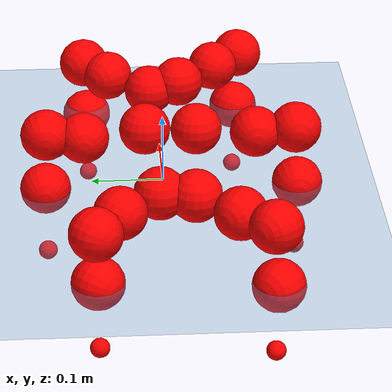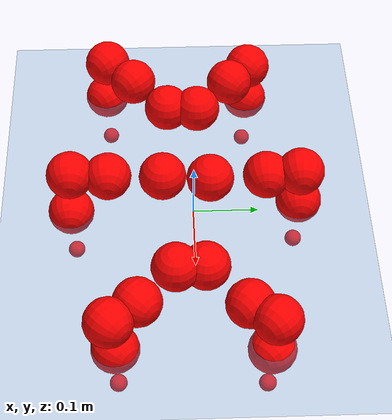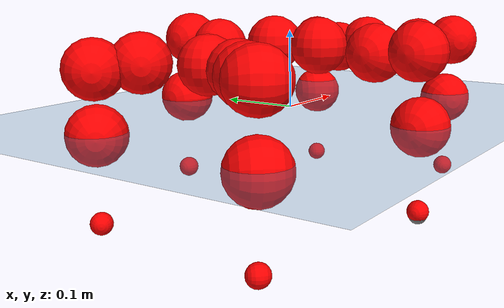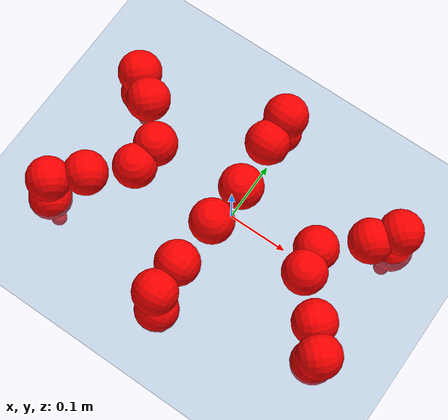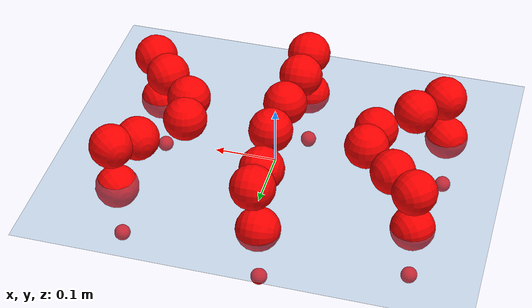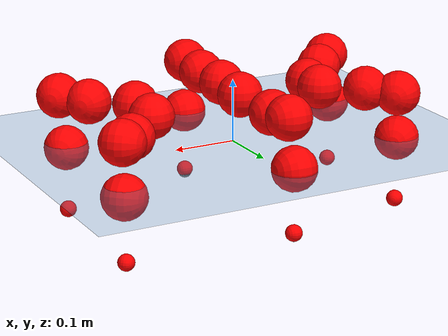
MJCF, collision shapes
<mujoco model="Golem">
  <compiler angle="radian" assetdir="assets" balanceinertia="true" inertiafromgeom="false"/>

  <option timestep="0.005" density="1.2" viscosity="2e-05"/>

  <size nkey="1"/>

  <visual>
    <quality shadowsize="8192"/>
    <map shadowclip="0.5"/>
  </visual>

  <default>
    <default class="/">
      <joint armature="0.01" damping="0.01" frictionloss="0.01"/>
      <geom contype="0" conaffinity="0" group="1" solref="-1000 -80"/>
      <site size="0.01 0.005 0.005" group="5"/>
      <general forcelimited="true" biastype="affine" gainprm="25" biasprm="0 -25 -0.5"/>
      <default class="visual">
        <geom type="mesh" group="2"/>
      </default>
      <default class="collision">
        <geom group="3"/>
      </default>
      <default class="foot">
        <geom size="0.01 0 0" condim="6" group="4" priority="1" solimp="0.015 1 0.01"/>
      </default>
      <default class="reward_collision_sphere">
        <geom group="5" rgba="1 0 0 1"/>
      </default>
    </default>
  </default>

  <asset>
    <texture type="skybox" colorspace="auto" name="//unnamed_texture_0" builtin="gradient" rgb1="0.95 0.95 0.95" rgb2="0.95 0.95 0.95" width="100" height="600"/>
    <texture type="2d" colorspace="auto" name="texplane" builtin="checker" rgb1="0.345 0.575 0.748" rgb2="0.345 0.575 0.748" markrgb="1 1 1" width="512" height="512"/>
    <material name="MatPlane" class="/" texture="texplane" texuniform="true" texrepeat="2 2" specular="0.9"/>
    <mesh name="body" class="/" file="body.stl" scale="0.001 0.001 0.001"/>
    <mesh name="coxa" class="/" file="coxa.stl" scale="0.001 0.001 0.001"/>
    <mesh name="femur" class="/" file="femur.stl" scale="0.001 0.001 0.001"/>
    <mesh name="tibia" class="/" file="tibia.stl" scale="0.001 0.001 0.001"/>
    <mesh name="tarsus" class="/" file="tarsus.stl" scale="0.001 0.001 0.001"/>
  </asset>

  <worldbody>
    <geom name="floor" class="/" size="100 100 0.125" type="plane" group="0" material="MatPlane"/>
    <light name="toplight_shadow" class="/" pos="0 0 5" dir="0.0990148 0.0990148 -0.990148" type="directional" ambient="0.04 0.04 0.04" diffuse="0.55 0.55 0.55" specular="0.12 0.12 0.12"/>
    <light name="toplight_fill" class="/" pos="0 0 5" dir="0.0990148 0.0990148 -0.990148" type="directional" castshadow="false" ambient="0.04 0.04 0.04" diffuse="0.3 0.3 0.3" specular="0.08 0.08 0.08"/>
    <body name="trunk" pos="-0.00221518 -0.008602 -0.00458124" quat="1 -0.000779579 5.08107e-05 -0.000499877">
      <inertial pos="0.00308671 0.00176133 0.00995251" quat="0.999967 -0.00376176 -0.00722443 0.000130499" mass="2.16548" diaginertia="0.00783352 0.000244519 0.0287466"/>
      <joint name="//unnamed_joint_0" type="free"/>
      <geom name="//unnamed_geom_1" class="/" pos="0 0 0.078734" quat="1 0 0 0" type="mesh" rgba="0.9 0.9 0.9 1" mesh="body"/>
      <site name="imu" class="/" pos="0.11853 0.0259697 0.116341" size="0.00891298"/>
      <camera name="track" class="/" pos="0 -0.966653 0" quat="0.707107 0.707107 0 0" mode="trackcom"/>
      <camera name="ego_camera" class="/" pos="0.124845 0 0.123022" quat="-0.5 -0.5 0.5 0.5"/>
      <body name="coxa_RR" pos="-0.174596 -0.0489668 0.0730789" quat="0.381488 -0.0026767 0.002627 -0.924366">
        <inertial pos="-0.000132466 0.00993123 -0.0093935" quat="0.999824 -0.00364016 0.0181422 -0.00314939" mass="0.12618" diaginertia="0.00781704 0.000264606 0.0281216"/>
        <joint name="coxa_joint_RR" class="/" pos="0 0 0" axis="0.00322134 0.00778759 -0.999964" range="-3.26853 3.13669" armature="0.00859837" damping="0.0215954" frictionloss="0.00853079"/>
        <geom name="//unnamed_geom_2" class="/" type="mesh" rgba="0.2 0.2 0.2 1" mesh="coxa"/>
        <geom name="//unnamed_geom_3" class="reward_collision_sphere" size="0.0356519" pos="-0.0288105 0 0"/>
        <body name="femur_RR" pos="0.0472909 0.000230525 0.00451083" quat="0.499505 -0.500318 0.50292 0.497241">
          <inertial pos="0.00650412 -0.00243432 0.000502744" quat="0.999997 -0.00108981 0.000644483 -0.0019698" mass="0.137055" diaginertia="0.00788336 0.000251451 0.0269918"/>
          <joint name="femur_joint_RR" class="/" pos="0 0 0" axis="-0.001503 0.0112994 -0.999935" range="-3.03308 3.05246" armature="0.0118079" damping="0.0274926" frictionloss="0.00912084"/>
          <geom name="//unnamed_geom_4" class="/" type="mesh" rgba="0.9 0.9 0.9 1" mesh="femur"/>
          <geom name="//unnamed_geom_5" class="reward_collision_sphere" size="0.0356519"/>
          <body name="tibia_RR" pos="-0.00350738 -0.0574585 0.0018311" quat="-0.000304002 1 -0.000268424 0.000538095">
            <inertial pos="-0.00380229 0.00180222 -0.000322185" quat="0.999791 0.0106787 -0.0131742 0.0114026" mass="0.145986" diaginertia="0.00759547 0.000229876 0.0233384"/>
            <joint name="tibia_joint_RR" class="/" pos="0 0 0" axis="0.0172518 -0.0245664 0.999549" stiffness="0.0144751" range="-3.07344 3.36156" armature="0.00871013" damping="0" frictionloss="0.00924398"/>
            <geom name="//unnamed_geom_6" class="/" type="mesh" rgba="0.2 0.2 0.2 1" mesh="tibia"/>
            <geom name="//unnamed_geom_7" class="reward_collision_sphere" size="0.0356519"/>
            <body name="tarsus_RR" pos="0.0853202 0.00857811 0.000416947" quat="1 -0.000567143 -9.30865e-05 0.000265566">
              <inertial pos="0.0511434 -0.0110024 0.00750809" quat="0.488933 0.508543 0.50756 0.494683" mass="0.124423" diaginertia="0.00767031 0.000212803 0.0249886"/>
              <joint name="tarsus_joint_RR" class="/" pos="0 0 0" axis="0.0142874 0.0170497 0.999753" range="-3.33378 3.162" armature="0.00812202" damping="0.0433602" frictionloss="0.00724478"/>
              <geom name="//unnamed_geom_8" class="/" type="mesh" rgba="0.9 0.9 0.9 1" mesh="tarsus"/>
              <geom name="foot_1" class="foot" size="0.00803979" pos="0.107559 0 0" quat="0 -0.707107 0 0.707107"/>
              <geom name="//unnamed_geom_10" class="reward_collision_sphere" size="0.0356519"/>
              <geom name="//unnamed_geom_11" class="reward_collision_sphere" size="0.0133695" pos="0.103238 0 0"/>
              <site name="foot_1" class="foot" pos="0.107559 0 0" quat="0 -0.707107 0 0.707107" size="0.00891298"/>
            </body>
          </body>
        </body>
      </body>
      <body name="coxa_RM" pos="-0.00186005 -0.0667988 0.0878641" quat="0.707391 0.000237268 0.000459872 -0.706822">
        <inertial pos="-0.000649475 -0.00315062 -0.00112063" quat="0.999954 0.00265803 0.00596783 -0.0069836" mass="0.149714" diaginertia="0.0081329 0.000255381 0.0277921"/>
        <joint name="coxa_joint_RM" class="/" pos="0 0 0" axis="-0.0119214 -0.00545844 -0.999914" stiffness="0.0449532" range="-3.13761 3.1563" armature="0.00793641" damping="0.0307016" frictionloss="0.0136703"/>
        <geom name="//unnamed_geom_12" class="/" type="mesh" rgba="0.2 0.2 0.2 1" mesh="coxa"/>
        <geom name="//unnamed_geom_13" class="reward_collision_sphere" size="0.0356519" pos="-0.0288105 0 0"/>
        <body name="femur_RM" pos="0.05327 -0.00512999 -0.0037863" quat="0.500095 -0.500032 0.500041 0.499832">
          <inertial pos="-0.00176766 0.00395608 -0.00657701" quat="0.999998 -0.000510614 -0.000169358 0.0017903" mass="0.136331" diaginertia="0.00890226 0.00026425 0.0272994"/>
          <joint name="femur_joint_RM" class="/" pos="0 0 0" axis="-0.00128446 0.000251865 -0.999999" stiffness="0.00160603" range="-3.14954 3.21428" armature="0.00826785" damping="0.0382243" frictionloss="0.00806341"/>
          <geom name="//unnamed_geom_14" class="/" type="mesh" rgba="0.9 0.9 0.9 1" mesh="femur"/>
          <geom name="//unnamed_geom_15" class="reward_collision_sphere" size="0.0356519"/>
          <body name="tibia_RM" pos="-0.00496064 -0.0560755 1.06725e-05" quat="1.40885e-05 1 -4.21245e-05 2.26214e-05">
            <inertial pos="0.00992863 0.00875109 -0.00163786" quat="0.998721 0.0171879 -0.0207999 -0.0427567" mass="0.143533" diaginertia="0.00791353 0.000260558 0.0313876"/>
            <joint name="tibia_joint_RM" class="/" pos="0 0 0" axis="0.000478324 0.00360571 0.999993" stiffness="0.000690547" range="-3.10293 3.07271" armature="0.00708157" damping="0" frictionloss="0.00694766"/>
            <geom name="//unnamed_geom_16" class="/" type="mesh" rgba="0.2 0.2 0.2 1" mesh="tibia"/>
            <geom name="//unnamed_geom_17" class="reward_collision_sphere" size="0.0356519"/>
            <body name="tarsus_RM" pos="0.0882662 0.00497456 -0.00058622" quat="1 -0.000145409 0.000236671 2.51608e-06">
              <inertial pos="0.0564604 0.00252084 -0.000144601" quat="0.498769 0.50568 0.495821 0.499679" mass="0.131971" diaginertia="0.00739934 0.000244669 0.0262315"/>
              <joint name="tarsus_joint_RM" class="/" pos="0 0 0" axis="0.0017832 -0.00190402 0.999997" stiffness="0.0136614" range="-3.13762 3.09873" armature="0.0132062" damping="0" frictionloss="0.00947755"/>
              <geom name="//unnamed_geom_18" class="/" type="mesh" rgba="0.9 0.9 0.9 1" mesh="tarsus"/>
              <geom name="foot_2" class="foot" size="0.0112022" pos="0.107559 0 0" quat="0 -0.707107 0 0.707107"/>
              <geom name="//unnamed_geom_20" class="reward_collision_sphere" size="0.0356519"/>
              <geom name="//unnamed_geom_21" class="reward_collision_sphere" size="0.0133695" pos="0.103238 0 0"/>
              <site name="foot_2" class="foot" pos="0.107559 0 0" quat="0 -0.707107 0 0.707107" size="0.00891298"/>
            </body>
          </body>
        </body>
      </body>
      <body name="coxa_RF" pos="0.176106 -0.0423178 0.0793302" quat="0.923922 -0.000123122 -2.36211e-05 -0.382581">
        <inertial pos="-0.00770564 0.000172971 -0.000567822" quat="0.999987 0.00402545 0.00319491 -0.000459064" mass="0.140067" diaginertia="0.00727248 0.000266737 0.0314335"/>
        <joint name="coxa_joint_RF" class="/" pos="0 0 0" axis="-0.00116384 -0.000294238 -0.999999" stiffness="0.00682757" range="-3.04293 3.1146" armature="0.0105966" damping="0.028513" frictionloss="0.00823026"/>
        <geom name="//unnamed_geom_22" class="/" type="mesh" rgba="0.2 0.2 0.2 1" mesh="coxa"/>
        <geom name="//unnamed_geom_23" class="reward_collision_sphere" size="0.0356519" pos="-0.0288105 0 0"/>
        <body name="femur_RF" pos="0.0479198 -0.000152864 -0.00338697" quat="0.500225 -0.498866 0.500291 0.500616">
          <inertial pos="-0.00272672 -0.000606632 0.00689293" quat="0.999989 0.000407118 0.00342577 0.00317789" mass="0.14977" diaginertia="0.00834077 0.000225478 0.0278217"/>
          <joint name="femur_joint_RF" class="/" pos="0 0 0" axis="0.00544578 0.00243976 -0.999982" stiffness="0.0250983" range="-3.29795 3.10558" armature="0.00648112" damping="0.0366265" frictionloss="0.00804274"/>
          <geom name="//unnamed_geom_24" class="/" type="mesh" rgba="0.9 0.9 0.9 1" mesh="femur"/>
          <geom name="//unnamed_geom_25" class="reward_collision_sphere" size="0.0356519"/>
          <body name="tibia_RF" pos="-0.00376343 -0.0515382 -0.00413328" quat="-0.000388585 1 0.000359492 0.000285145">
            <inertial pos="-0.00192185 -0.00511024 0.0022671" quat="0.999988 0.000355056 -0.0029403 0.00398011" mass="0.144864" diaginertia="0.00717691 0.000282716 0.0261699"/>
            <joint name="tibia_joint_RF" class="/" pos="0 0 0" axis="-0.000354694 0.000464141 1" range="-3.11064 3.13831" armature="0.00785015" damping="0.00844176" frictionloss="0.0120565"/>
            <geom name="//unnamed_geom_26" class="/" type="mesh" rgba="0.2 0.2 0.2 1" mesh="tibia"/>
            <geom name="//unnamed_geom_27" class="reward_collision_sphere" size="0.0356519"/>
            <body name="tarsus_RF" pos="0.0851787 -0.00882487 0.00159808" quat="0.999989 -0.00290554 -0.0025903 0.00260362">
              <inertial pos="0.0621519 0.00970957 0.000190288" quat="0.477422 0.48005 0.495599 0.544061" mass="0.150425" diaginertia="0.00709452 0.000291513 0.0276038"/>
              <joint name="tarsus_joint_RF" class="/" pos="0 0 0" axis="-0.0127265 0.0310082 0.999438" stiffness="0.0448363" range="-3.32777 3.11231" armature="0.00426117" damping="0" frictionloss="0.00911899"/>
              <geom name="//unnamed_geom_28" class="/" type="mesh" rgba="0.9 0.9 0.9 1" mesh="tarsus"/>
              <geom name="foot_3" class="foot" size="0.0091673" pos="0.107559 0 0" quat="0 -0.707107 0 0.707107"/>
              <geom name="//unnamed_geom_30" class="reward_collision_sphere" size="0.0356519"/>
              <geom name="//unnamed_geom_31" class="reward_collision_sphere" size="0.0133695" pos="0.103238 0 0"/>
              <site name="foot_3" class="foot" pos="0.107559 0 0" quat="0 -0.707107 0 0.707107" size="0.00891298"/>
            </body>
          </body>
        </body>
      </body>
      <body name="coxa_LR" pos="-0.16933 0.0389448 0.0751329" quat="0.381888 -0.000619183 0.000748116 0.924208">
        <inertial pos="0.0010533 0.0101049 -0.000525393" quat="0.999395 0.017969 0.00239704 -0.0296827" mass="0.155323" diaginertia="0.00926406 0.000262122 0.0324154"/>
        <joint name="coxa_joint_LR" class="/" pos="0 0 0" axis="0.01447 0.00758562 -0.999867" stiffness="0.0277666" range="-3.07777 2.94791" armature="0.0128001" damping="0" frictionloss="0.00857002"/>
        <geom name="//unnamed_geom_32" class="/" type="mesh" rgba="0.2 0.2 0.2 1" mesh="coxa"/>
        <geom name="//unnamed_geom_33" class="reward_collision_sphere" size="0.0356519" pos="-0.0288105 0 0"/>
        <body name="femur_LR" pos="0.046299 -0.000632522 0.00417631" quat="0.498222 -0.501981 0.498941 0.500846">
          <inertial pos="-0.00116935 0.00109834 0.000190828" quat="0.998882 0.0105734 -0.0206542 0.0411903" mass="0.148279" diaginertia="0.00827851 0.00026251 0.024122"/>
          <joint name="femur_joint_LR" class="/" pos="0 0 0" axis="-0.0176999 0.00291512 0.999839" stiffness="0.0357865" range="-3.35122 3.27847" armature="0.00715847" damping="0.0358737" frictionloss="0.00836369"/>
          <geom name="//unnamed_geom_34" class="/" type="mesh" rgba="0.9 0.9 0.9 1" mesh="femur"/>
          <geom name="//unnamed_geom_35" class="reward_collision_sphere" size="0.0356519"/>
          <body name="tibia_LR" pos="0.00488832 -0.0513646 0.00530716" quat="-0.000664712 0.999998 0.00145558 0.00108404">
            <inertial pos="-0.00127613 0.00945725 -0.00542908" quat="0.999744 0.0117227 -0.010433 0.0162873" mass="0.145856" diaginertia="0.00779914 0.000259807 0.0290122"/>
            <joint name="tibia_joint_LR" class="/" pos="0 0 0" axis="-0.00194843 0.00279974 -0.999994" stiffness="0.00360174" range="-2.99865 3.05424" armature="0.0106554" damping="0.0684968" frictionloss="0.00675183"/>
            <geom name="//unnamed_geom_36" class="/" type="mesh" rgba="0.2 0.2 0.2 1" mesh="tibia"/>
            <geom name="//unnamed_geom_37" class="reward_collision_sphere" size="0.0356519"/>
            <body name="tarsus_LR" pos="0.0742107 0.000158937 -0.00130776" quat="0.999992 -0.00305036 0.0001221 0.00250087">
              <inertial pos="0.0525017 -0.000349655 0.000790398" quat="0.503274 0.477886 0.509978 0.508196" mass="0.134052" diaginertia="0.00779789 0.000244996 0.0267146"/>
              <joint name="tarsus_joint_LR" class="/" pos="0 0 0" axis="-0.0120297 0.00148407 -0.999927" stiffness="0.0385074" range="-2.97746 3.16879" armature="0.0087303" damping="0.0282589" frictionloss="0.0127085"/>
              <geom name="//unnamed_geom_38" class="/" type="mesh" rgba="0.9 0.9 0.9 1" mesh="tarsus"/>
              <geom name="foot_4" class="foot" size="0.00926013" pos="0.107559 0 0" quat="0.707107 0 -0.707107 0"/>
              <geom name="//unnamed_geom_40" class="reward_collision_sphere" size="0.0356519"/>
              <geom name="//unnamed_geom_41" class="reward_collision_sphere" size="0.0133695" pos="0.103238 0 0"/>
              <site name="foot_4" class="foot" pos="0.107559 0 0" quat="0.707107 0 -0.707107 0" size="0.00891298"/>
            </body>
          </body>
        </body>
      </body>
      <body name="coxa_LM" pos="0.00270012 0.0618425 0.0873" quat="0.706856 0.00194802 0.000161402 0.707355">
        <inertial pos="0.0078422 0.00100522 0.00662056" quat="0.999991 -0.00199915 -0.00326945 0.0017571" mass="0.146507" diaginertia="0.00910904 0.000301008 0.0255203"/>
        <joint name="coxa_joint_LM" class="/" pos="0 0 0" axis="0.00228877 0.00245739 -0.999994" stiffness="0.0023351" range="-3.1383 3.11443" armature="0.0050141" damping="0.0545335" frictionloss="0.0112003"/>
        <geom name="//unnamed_geom_42" class="/" type="mesh" rgba="0.2 0.2 0.2 1" mesh="coxa"/>
        <geom name="//unnamed_geom_43" class="reward_collision_sphere" size="0.0356519" pos="-0.0288105 0 0"/>
        <body name="femur_LM" pos="0.0561984 0.00895643 -0.0067901" quat="0.499539 -0.500668 0.500023 0.499769">
          <inertial pos="-0.00677895 -0.00356357 -0.00860994" quat="0.999961 -0.00293049 0.00126536 -0.00826807" mass="0.141569" diaginertia="0.00782702 0.000260633 0.0288731"/>
          <joint name="femur_joint_LM" class="/" pos="0 0 0" axis="0.000439111 0.0068113 0.999977" range="-3.11432 3.27255" armature="0.00744623" damping="0.0290271" frictionloss="0.00648181"/>
          <geom name="//unnamed_geom_44" class="/" type="mesh" rgba="0.9 0.9 0.9 1" mesh="femur"/>
          <geom name="//unnamed_geom_45" class="reward_collision_sphere" size="0.0356519"/>
          <body name="tibia_LM" pos="-0.00591407 -0.0512084 -0.000101134" quat="-0.000774254 0.999999 -0.000743112 -6.69214e-05">
            <inertial pos="0.0045266 0.00978975 -0.0106088" quat="0.998558 0.0282214 0.0184416 -0.0417807" mass="0.148486" diaginertia="0.00791338 0.000272309 0.0304782"/>
            <joint name="tibia_joint_LM" class="/" pos="0 0 0" axis="-0.0277879 0.0165891 -0.999476" stiffness="0.0504119" range="-3.17128 3.31025" armature="0.00801176" damping="0.0137795" frictionloss="0.00849858"/>
            <geom name="//unnamed_geom_46" class="/" type="mesh" rgba="0.2 0.2 0.2 1" mesh="tibia"/>
            <geom name="//unnamed_geom_47" class="reward_collision_sphere" size="0.0356519"/>
            <body name="tarsus_LM" pos="0.08037 0.00339321 -0.00836854" quat="1 0.000860038 0.000257621 5.41222e-05">
              <inertial pos="0.0606292 0.00116859 0.00761238" quat="0.535365 0.467887 0.503206 0.491171" mass="0.132817" diaginertia="0.00830524 0.000296979 0.0312131"/>
              <joint name="tarsus_joint_LM" class="/" pos="0 0 0" axis="0.0397385 0.00211542 -0.999208" stiffness="0.0395566" range="-3.18021 3.30474" armature="0.0102233" damping="0" frictionloss="0.00914544"/>
              <geom name="//unnamed_geom_48" class="/" type="mesh" rgba="0.9 0.9 0.9 1" mesh="tarsus"/>
              <geom name="foot_5" class="foot" size="0.00935724" pos="0.107559 0 0" quat="0.707107 0 -0.707107 0"/>
              <geom name="//unnamed_geom_50" class="reward_collision_sphere" size="0.0356519"/>
              <geom name="//unnamed_geom_51" class="reward_collision_sphere" size="0.0133695" pos="0.103238 0 0"/>
              <site name="foot_5" class="foot" pos="0.107559 0 0" quat="0.707107 0 -0.707107 0" size="0.00891298"/>
            </body>
          </body>
        </body>
      </body>
      <body name="coxa_LF" pos="0.1689 0.0418823 0.0702381" quat="0.922697 0.00151054 0.00287155 0.385513">
        <inertial pos="-0.000639649 0.00020965 -0.00232622" quat="0.99857 0.00907813 0.0199517 -0.048763" mass="0.125671" diaginertia="0.00856898 0.000235916 0.0320838"/>
        <joint name="coxa_joint_LF" class="/" pos="0 0 0" axis="0.00511262 -0.00233583 -0.999984" stiffness="0.044636" range="-3.13666 3.12491" armature="0.0100675" damping="0.027957" frictionloss="0.00912707"/>
        <geom name="//unnamed_geom_52" class="/" type="mesh" rgba="0.2 0.2 0.2 1" mesh="coxa"/>
        <geom name="//unnamed_geom_53" class="reward_collision_sphere" size="0.0356519" pos="-0.0288105 0 0"/>
        <body name="femur_LF" pos="0.0558329 -0.00165235 -0.00576754" quat="0.500447 -0.499088 0.499532 0.500931">
          <inertial pos="-0.00814665 0.00118404 -0.00954803" quat="0.999964 -0.000150883 -0.00574374 0.00624001" mass="0.155882" diaginertia="0.00879007 0.000262461 0.0305366"/>
          <joint name="femur_joint_LF" class="/" pos="0 0 0" axis="0.0033206 -0.0235445 0.999717" stiffness="0.000678804" range="-3.15787 2.92115" armature="0.00606785" damping="0.0366524" frictionloss="0.00975096"/>
          <geom name="//unnamed_geom_54" class="/" type="mesh" rgba="0.9 0.9 0.9 1" mesh="femur"/>
          <geom name="//unnamed_geom_55" class="reward_collision_sphere" size="0.0356519"/>
          <body name="tibia_LF" pos="-0.00668609 -0.0471334 0.00337058" quat="0.00163983 0.999996 -0.00183221 -0.00110745">
            <inertial pos="0.00042945 -0.000161764 0.000116127" quat="0.99996 0.00346927 0.00626106 0.00539944" mass="0.140039" diaginertia="0.00791859 0.000268167 0.0280331"/>
            <joint name="tibia_joint_LF" class="/" pos="0 0 0" axis="0.0275198 -0.0221213 -0.999376" range="-3.09604 3.02578" armature="0.0128713" damping="0" frictionloss="0.00837785"/>
            <geom name="//unnamed_geom_56" class="/" type="mesh" rgba="0.2 0.2 0.2 1" mesh="tibia"/>
            <geom name="//unnamed_geom_57" class="reward_collision_sphere" size="0.0356519"/>
            <body name="tarsus_LF" pos="0.085363 -0.00327676 0.000312243" quat="0.999999 -0.000355154 0.000124732 -0.000980181">
              <inertial pos="0.0648442 -0.00157699 -1.32876e-05" quat="0.497311 0.501493 0.5014 0.499785" mass="0.153549" diaginertia="0.0084919 0.000276627 0.0281087"/>
              <joint name="tarsus_joint_LF" class="/" pos="0 0 0" axis="0.0030478 -0.015139 -0.999881" stiffness="0.0300687" range="-2.9608 2.95116" armature="0.00858936" damping="0.0251964" frictionloss="0.008097"/>
              <geom name="//unnamed_geom_58" class="/" type="mesh" rgba="0.9 0.9 0.9 1" mesh="tarsus"/>
              <geom name="foot_6" class="foot" size="0.00768036" pos="0.107559 0 0" quat="0.707107 0 -0.707107 0"/>
              <geom name="//unnamed_geom_60" class="reward_collision_sphere" size="0.0356519"/>
              <geom name="//unnamed_geom_61" class="reward_collision_sphere" size="0.0133695" pos="0.103238 0 0"/>
              <site name="foot_6" class="foot" pos="0.107559 0 0" quat="0.707107 0 -0.707107 0" size="0.00891298"/>
            </body>
          </body>
        </body>
      </body>
    </body>
  </worldbody>

  <contact>
    <pair class="/" geom1="floor" geom2="foot_1" name="//unnamed_contact_0"/>
    <pair class="/" geom1="floor" geom2="foot_2" name="//unnamed_contact_1"/>
    <pair class="/" geom1="floor" geom2="foot_3" name="//unnamed_contact_2"/>
    <pair class="/" geom1="floor" geom2="foot_4" name="//unnamed_contact_3"/>
    <pair class="/" geom1="floor" geom2="foot_5" name="//unnamed_contact_4"/>
    <pair class="/" geom1="floor" geom2="foot_6" name="//unnamed_contact_5"/>
  </contact>

  <actuator>
    <general name="coxa_joint_RR" class="/" joint="coxa_joint_RR" forcerange="-5.88075 5.88075" gainprm="20.8347" biasprm="0 -20.8347 -0.401916"/>
    <general name="femur_joint_RR" class="/" joint="femur_joint_RR" forcerange="-7.38215 7.38215" gainprm="20.8347" biasprm="0 -20.8347 -0.401916"/>
    <general name="tibia_joint_RR" class="/" joint="tibia_joint_RR" forcerange="-8.90759 8.90759" gainprm="20.8347" biasprm="0 -20.8347 -0.401916"/>
    <general name="tarsus_joint_RR" class="/" joint="tarsus_joint_RR" forcerange="-7.74937 7.74937" gainprm="20.8347" biasprm="0 -20.8347 -0.401916"/>
    <general name="coxa_joint_RM" class="/" joint="coxa_joint_RM" forcerange="-6.47791 6.47791" gainprm="20.8347" biasprm="0 -20.8347 -0.401916"/>
    <general name="femur_joint_RM" class="/" joint="femur_joint_RM" forcerange="-6.9701 6.9701" gainprm="20.8347" biasprm="0 -20.8347 -0.401916"/>
    <general name="tibia_joint_RM" class="/" joint="tibia_joint_RM" forcerange="-9.1235 9.1235" gainprm="20.8347" biasprm="0 -20.8347 -0.401916"/>
    <general name="tarsus_joint_RM" class="/" joint="tarsus_joint_RM" forcerange="-6.76097 6.76097" gainprm="20.8347" biasprm="0 -20.8347 -0.401916"/>
    <general name="coxa_joint_RF" class="/" joint="coxa_joint_RF" forcerange="-6.05594 6.05594" gainprm="20.8347" biasprm="0 -20.8347 -0.401916"/>
    <general name="femur_joint_RF" class="/" joint="femur_joint_RF" forcerange="-3.88678 3.88678" gainprm="20.8347" biasprm="0 -20.8347 -0.401916"/>
    <general name="tibia_joint_RF" class="/" joint="tibia_joint_RF" forcerange="-5.63555 5.63555" gainprm="20.8347" biasprm="0 -20.8347 -0.401916"/>
    <general name="tarsus_joint_RF" class="/" joint="tarsus_joint_RF" forcerange="-3.90964 3.90964" gainprm="20.8347" biasprm="0 -20.8347 -0.401916"/>
    <general name="coxa_joint_LR" class="/" joint="coxa_joint_LR" forcerange="-8.34204 8.34204" gainprm="20.8347" biasprm="0 -20.8347 -0.401916"/>
    <general name="femur_joint_LR" class="/" joint="femur_joint_LR" forcerange="-6.01239 6.01239" gainprm="20.8347" biasprm="0 -20.8347 -0.401916"/>
    <general name="tibia_joint_LR" class="/" joint="tibia_joint_LR" forcerange="-5.41052 5.41052" gainprm="20.8347" biasprm="0 -20.8347 -0.401916"/>
    <general name="tarsus_joint_LR" class="/" joint="tarsus_joint_LR" forcerange="-6.16052 6.16052" gainprm="20.8347" biasprm="0 -20.8347 -0.401916"/>
    <general name="coxa_joint_LM" class="/" joint="coxa_joint_LM" forcerange="-5.70871 5.70871" gainprm="20.8347" biasprm="0 -20.8347 -0.401916"/>
    <general name="femur_joint_LM" class="/" joint="femur_joint_LM" forcerange="-6.55641 6.55641" gainprm="20.8347" biasprm="0 -20.8347 -0.401916"/>
    <general name="tibia_joint_LM" class="/" joint="tibia_joint_LM" forcerange="-8.75099 8.75099" gainprm="20.8347" biasprm="0 -20.8347 -0.401916"/>
    <general name="tarsus_joint_LM" class="/" joint="tarsus_joint_LM" forcerange="-7.93116 7.93116" gainprm="20.8347" biasprm="0 -20.8347 -0.401916"/>
    <general name="coxa_joint_LF" class="/" joint="coxa_joint_LF" forcerange="-6.08905 6.08905" gainprm="20.8347" biasprm="0 -20.8347 -0.401916"/>
    <general name="femur_joint_LF" class="/" joint="femur_joint_LF" forcerange="-8.42871 8.42871" gainprm="20.8347" biasprm="0 -20.8347 -0.401916"/>
    <general name="tibia_joint_LF" class="/" joint="tibia_joint_LF" forcerange="-6.95039 6.95039" gainprm="20.8347" biasprm="0 -20.8347 -0.401916"/>
    <general name="tarsus_joint_LF" class="/" joint="tarsus_joint_LF" forcerange="-6.57254 6.57254" gainprm="20.8347" biasprm="0 -20.8347 -0.401916"/>
  </actuator>

  <sensor>
    <gyro site="imu" name="imu_angular_velocity"/>
    <velocimeter site="imu" name="imu_linear_velocity"/>
    <framelinvel objtype="site" objname="foot_1" name="foot_1_global_linear_velocity"/>
    <framelinvel objtype="site" objname="foot_2" name="foot_2_global_linear_velocity"/>
    <framelinvel objtype="site" objname="foot_3" name="foot_3_global_linear_velocity"/>
    <framelinvel objtype="site" objname="foot_4" name="foot_4_global_linear_velocity"/>
    <framelinvel objtype="site" objname="foot_5" name="foot_5_global_linear_velocity"/>
    <framelinvel objtype="site" objname="foot_6" name="foot_6_global_linear_velocity"/>
  </sensor>

  <keyframe>
    <key name="home" qpos="0 0 0.1457 1 0 0 0 0 0 0 0 0 0 0 0 0 0 0 0 0 0 0 0 0 0 0 0 0 0 0 0"/>
  </keyframe>
</mujoco>
